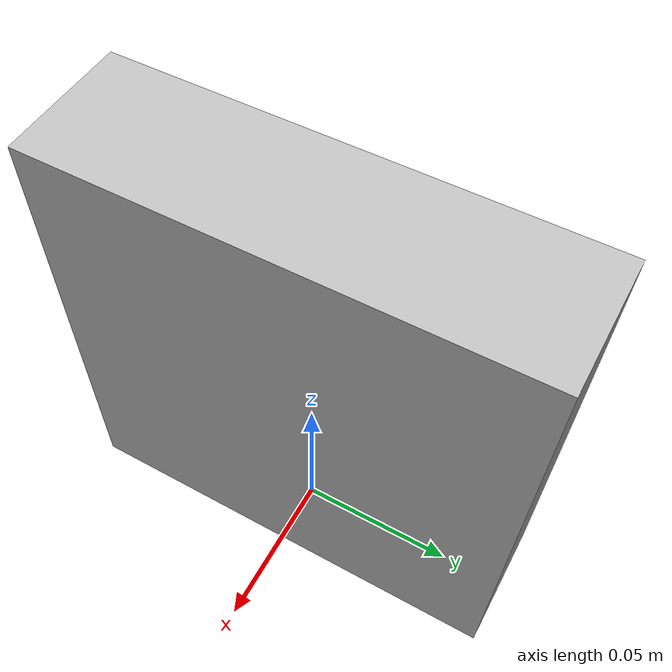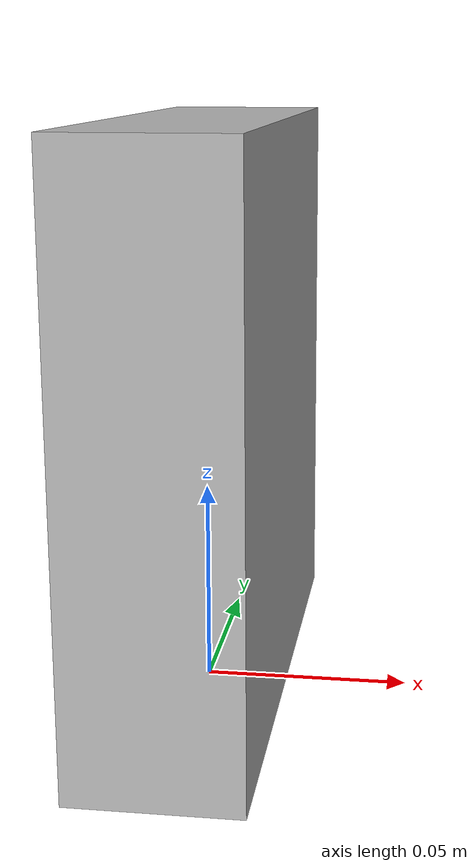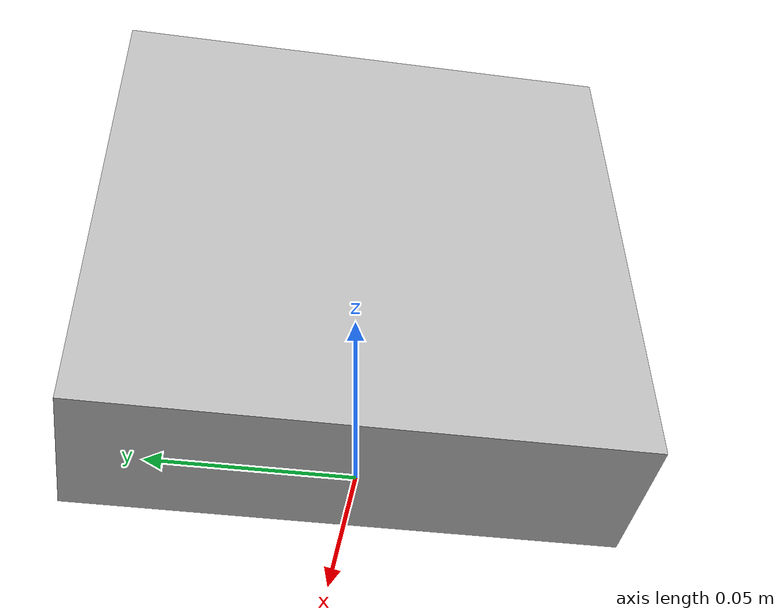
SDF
<sdf version='1.6'>
  <model name='box'>
    <link name='main_body'>
      <pose frame=''>0 0 0 0 0 0</pose>
      <inertial>
        <mass>0.2</mass>
        <!-- is3s3 = m/12*(s1^2 + s2^2)-->
        <!-- https://en.wikipedia.org/wiki/List_of_moments_of_inertia#List_of_3D_inertia_tensors -->
        <pose frame=''>0 0 0.07 0 0 0</pose>
        <inertia>
          <ixx>6.5333e-4</ixx>
          <ixy>0</ixy>
          <ixz>0</ixz>
          <iyy>3.5333e-4</iyy>
          <iyz>0</iyz>
          <izz>3.5333e-4</izz>
        </inertia>
      </inertial>

      <collision name='main_body_collision'>
        <pose frame=''>0 0 0.07 0 0 0</pose>
        <geometry>
          <box>
            <size>0.04 0.14 0.14</size>
          </box>
        </geometry>
        <surface>
          <friction>
            <ode>
              <mu>0.9</mu>
              <mu2>0.5</mu2>
            </ode>
          </friction>
        </surface>
      </collision>

      <visual name='main_body_visual'>
        <pose frame=''>0 0 0.07 0 0 0</pose>
        <geometry>
          <box>
            <size>0.04 0.14 0.14</size>
          </box>
        </geometry>
      </visual>

    </link>
  </model>
</sdf>
